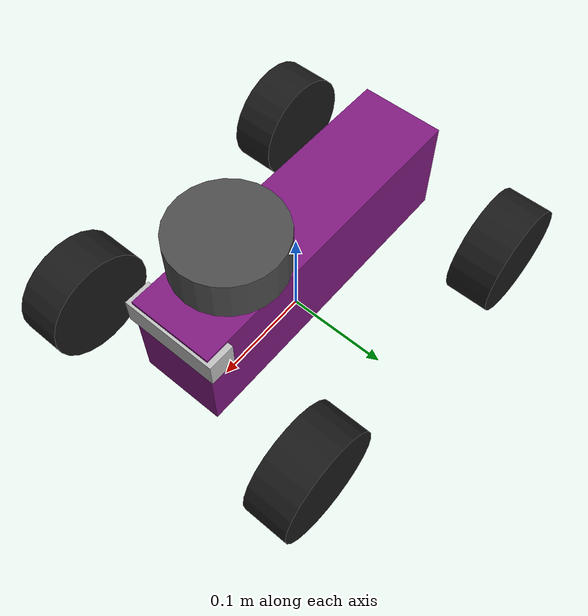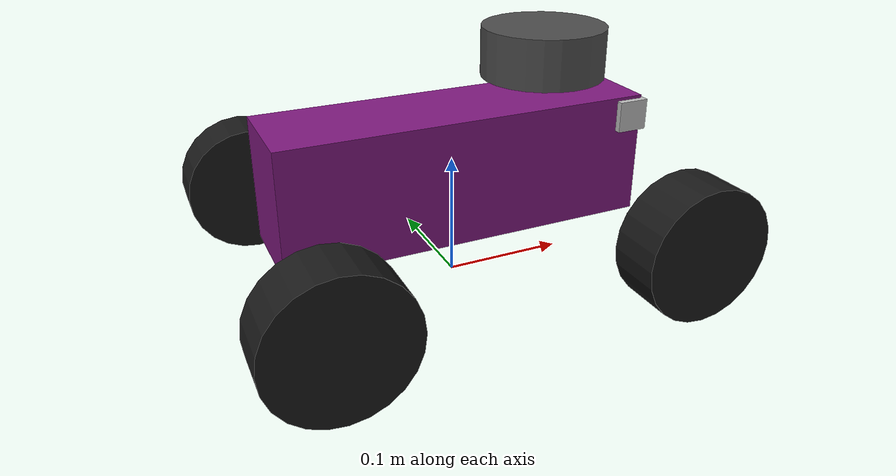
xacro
<robot name="car" xmlns:xacro="http://www.ros.org/wiki/xacro">
      <material name="pla">
          <color rgba="0.5 0.1 0.5 1.0" />
      </material>
      <material name="pla_black">
          <color rgba="0.3 0.3 0.3 1.0" />
      </material>
      <material name="aluminum">
          <color rgba="0.75 0.75 0.75 1.0" />
      </material>
      <material name="rubber">
          <color rgba="0.1 0.1 0.1 1" />
      </material>

      <link name="base_link">
        <inertial>
          <origin xyz="0 -0 0.01" rpy="0 -0 0"/>
          <mass value="1.2" />
          <inertia
            ixx="0.00164"
            ixy="0"
            ixz="0"
            iyy="0.01"
            iyz="0"
            izz="0.00964"
          />
        </inertial>
        <visual>
          <origin xyz="-0 0 0.095" rpy="0 -0 0"/>
          <geometry>
            <box size="0.3 0.08 0.1" />
          </geometry>
          <material name="pla"/>
        </visual>
        <collision>
          <origin xyz="-0 0 0.1" rpy="0 -0 0"/>
          <geometry>
            <box size="0.34 0.1 0.1" />
          </geometry>
        </collision>
      </link>

      <link name="base_footprint" />
      <joint name="base_joint" type="fixed">
             <parent link="base_link"/>
             <child link="base_footprint"/>
             <origin xyz="0.0 0.0 -0.0" rpy="0.0 0.0 0.0" />
     </joint>

      <link name="base_laser">
        <inertial>
          <mass value="0.0"/>
          <inertia
            ixx="0.0"
            iyy="0.0"
            izz="0.0"
            ixy="0.0"
            ixz="0.0"
            iyz="0.0"
          />
        </inertial>
        <collision>
          <geometry>
            <cylinder radius="0.05" length="0.04" />
          </geometry>
        </collision>
        <visual>
          <geometry>
            <cylinder radius="0.05" length="0.04" />
          </geometry>
          <material name="pla_black"/>
        </visual>
      </link>

      <link name="camera_link">
        <inertial>
          <mass value="0.0"/>
          <inertia
            ixx="0.0"
            iyy="0.0"
            izz="0.0"
            ixy="0.0"
            ixz="0.0"
            iyz="0.0"
          />
        </inertial>
        <collision>
          <geometry>
            <box size="0.025 0.09 0.025" />
          </geometry>
        </collision>
        <visual>
          <geometry>001
            <box size="0.025 0.09 0.025" />
          </geometry>
          <material name="aluminum"/>
        </visual>
      </link>

      <link name="rear_left_wheel">
        <inertial>
          <mass value="0.1" />
          <inertia
            ixx="0.0000729"
            ixy="0"
            ixz="0"
            iyy="0.0000729"
            iyz="0"
            izz="0.0001458"
          />
        </inertial>
        <visual>
          <geometry>
            <cylinder radius="0.054" length="0.043" />
          </geometry>
          <material name="rubber"/>
        </visual>
        <collision name='collision'>
          <geometry>
            <cylinder radius="0.054" length="0.043" />
          </geometry>
        </collision>
      </link>

      <link name="rear_right_wheel">
        <inertial>
          <mass value="0.1" />
          <inertia
            ixx="0.0000729"
            ixy="0"
            ixz="0"
            iyy="0.0000729"
            iyz="0"
            izz="0.0001458"
          />
        </inertial>
        <visual>
          <geometry>
            <cylinder radius="0.054" length="0.043" />
          </geometry>
          <material name="rubber"/>
        </visual>
        <collision name='collision'>
          <geometry>
            <cylinder radius="0.054" length="0.043" />
          </geometry>
        </collision>
      </link>

      <link name="front_left_wheel">
        <inertial>
          <mass value="0.1" />
          <inertia
            ixx="0.0000729"
            ixy="0"
            ixz="0"
            iyy="0.0000729"
            iyz="0"
            izz="0.0001458"
          />
        </inertial>
        <visual>
          <geometry>
            <cylinder radius="0.054" length="0.043" />
          </geometry>
          <material name="rubber"/>
        </visual>
        <collision name='collision'>
          <geometry>
            <cylinder radius="0.054" length="0.043" />
          </geometry>
        </collision>
      </link>

      <link name="front_right_wheel">
        <inertial>
          <mass value="0.1" />
          <inertia
            ixx="0.0000729"
            ixy="0"
            ixz="0"
            iyy="0.0000729"
            iyz="0"
            izz="0.0001458"
          />
        </inertial>
        <visual>
          <geometry>
            <cylinder radius="0.054" length="0.043" />
          </geometry>
          <material name="rubber" />
        </visual>
        <collision name='collision'>
          <geometry>
            <cylinder radius="0.054" length="0.043" />
          </geometry>
        </collision>
      </link>

      <link name="front_left_hub">
        <inertial>
          <mass value="0.0" />
          <inertia
            ixx="0.0"
            ixy="0"
            ixz="0"
            iyy="0.0"
            iyz="0"
            izz="0.0"
          />
        </inertial>
        <collision name='collision'>
          <geometry>
            <box size="0.05 0.08 0.05" />
          </geometry>
        </collision>
      </link>

      <link name="front_right_hub">
        <inertial>
          <mass value="0.0" />
          <inertia
            ixx="0.0"
            ixy="0"
            ixz="0"
            iyy="0.0"
            iyz="0"
            izz="0.0"
          />
        </inertial>
        <collision name='collision'>
          <geometry>
            <box size="0.05 0.08 0.05" />
          </geometry>
        </collision>
      </link>

      <joint name="lidar_sensor_joint" type="fixed">
        <origin xyz="0.08 -0 0.18" rpy="0 0 0" />
        <parent link="base_link" />
        <child link="base_laser" />
      </joint>

      <joint name="camera_sensor_joint" type="fixed">
        <origin xyz="0.14 -0 0.13" rpy="0 0 0" />
        <parent link="base_link" />
        <child link="camera_link" />
      </joint>

      <joint name="rear_left_wheel_joint" type="continuous">
        <origin xyz="-0.14 0.13 0.054" rpy="-1.5707 0 0" />
        <parent link="base_link" />
        <child link="rear_left_wheel" />
        <axis xyz="0 0 1" />
      </joint>

      <joint name="rear_right_wheel_joint" type="continuous">
        <origin xyz="-0.14 -0.13 0.054" rpy="-1.5707 0 0" />
        <parent link="base_link" />
        <child link="rear_right_wheel" />
        <axis xyz="0 0 1" />
      </joint>

      <joint name="front_left_wheel_joint" type="continuous">
        <origin xyz="-0 0.02 0" rpy="-1.5707 0 0" />
        <parent link="front_left_hub" />
        <child link="front_left_wheel" />
        <axis xyz="0 0 1" />
      </joint>

      <joint name="front_right_wheel_joint" type="continuous">
        <origin xyz="-0 -0.02 0" rpy="-1.5707 0 0" />
        <parent link="front_right_hub" />
        <child link="front_right_wheel" />
        <axis xyz="0 0 1" />
      </joint>

      <joint name="front_left_hub_joint" type="revolute">
        <origin xyz="0.14 0.11 0.054" rpy="0 0 0" />
        <limit upper="0.5" lower="-0.5" velocity="2.0" />
        <parent link="base_link" />
        <child link="front_left_hub" />
        <axis xyz="0 0 1" />
      </joint>

      <joint name="front_right_hub_joint" type="revolute">
        <origin xyz="0.14 -0.11 0.054" rpy="0 0 0" />
        <limit upper="0.5" lower="-0.5" velocity="2.0" />
        <parent link="base_link" />
        <child link="front_right_hub" />
        <axis xyz="0 0 1" />
      </joint>
</robot>
